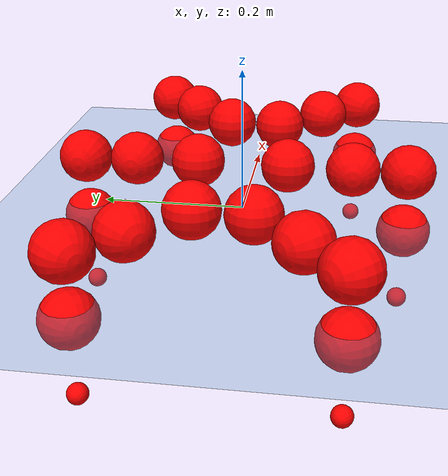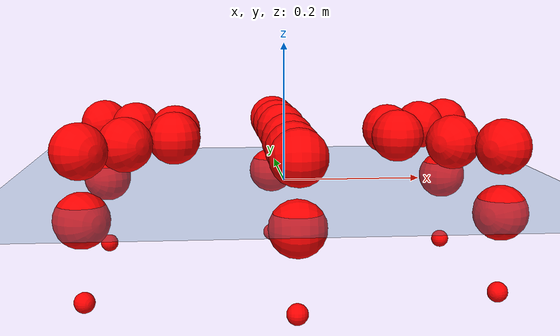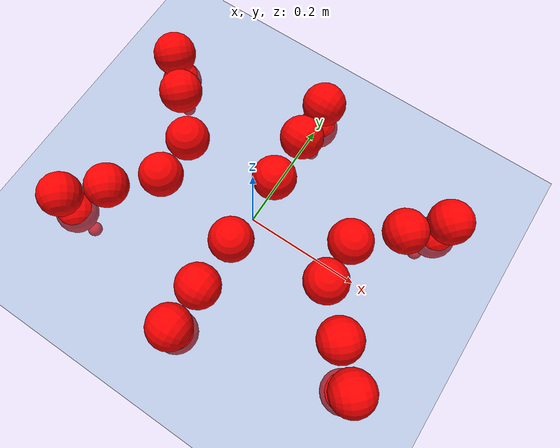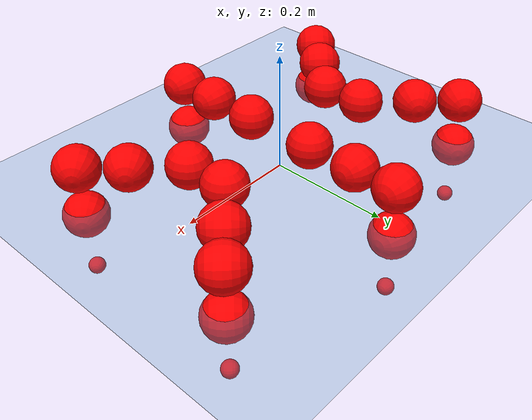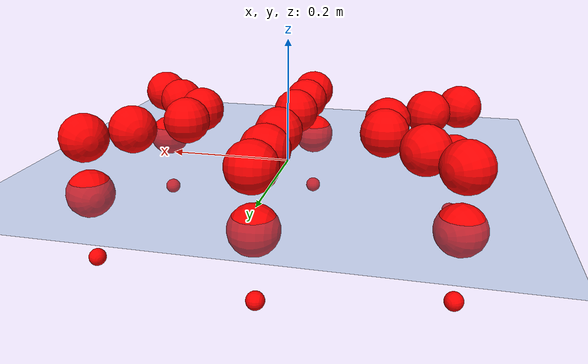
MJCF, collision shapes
<mujoco model="Golem">
  <compiler angle="radian" assetdir="assets" balanceinertia="true" inertiafromgeom="false"/>

  <option timestep="0.005" density="1.2" viscosity="2e-05"/>

  <size nkey="1"/>

  <visual>
    <quality shadowsize="8192"/>
    <map shadowclip="0.5"/>
  </visual>

  <default>
    <default class="/">
      <joint armature="0.01" damping="0.01" frictionloss="0.01"/>
      <geom contype="0" conaffinity="0" group="1" solref="-1000 -80"/>
      <site size="0.01 0.005 0.005" group="5"/>
      <general forcelimited="true" biastype="affine" gainprm="25" biasprm="0 -25 -0.5"/>
      <default class="visual">
        <geom type="mesh" group="2"/>
      </default>
      <default class="collision">
        <geom group="3"/>
      </default>
      <default class="foot">
        <geom size="0.01 0 0" condim="6" group="4" priority="1" solimp="0.015 1 0.01"/>
      </default>
      <default class="reward_collision_sphere">
        <geom group="5" rgba="1 0 0 1"/>
      </default>
    </default>
  </default>

  <asset>
    <texture type="skybox" colorspace="auto" name="//unnamed_texture_0" builtin="gradient" rgb1="0.95 0.95 0.95" rgb2="0.95 0.95 0.95" width="100" height="600"/>
    <texture type="2d" colorspace="auto" name="texplane" builtin="checker" rgb1="0.345 0.575 0.748" rgb2="0.345 0.575 0.748" markrgb="1 1 1" width="512" height="512"/>
    <material name="MatPlane" class="/" texture="texplane" texuniform="true" texrepeat="2 2" specular="0.9"/>
    <mesh name="body" class="/" file="body.stl" scale="0.001 0.001 0.001"/>
    <mesh name="coxa" class="/" file="coxa.stl" scale="0.001 0.001 0.001"/>
    <mesh name="femur" class="/" file="femur.stl" scale="0.001 0.001 0.001"/>
    <mesh name="tibia" class="/" file="tibia.stl" scale="0.001 0.001 0.001"/>
    <mesh name="tarsus" class="/" file="tarsus.stl" scale="0.001 0.001 0.001"/>
  </asset>

  <worldbody>
    <geom name="floor" class="/" size="100 100 0.125" type="plane" group="0" material="MatPlane"/>
    <light name="toplight_shadow" class="/" pos="0 0 5" dir="0.0990148 0.0990148 -0.990148" type="directional" ambient="0.04 0.04 0.04" diffuse="0.55 0.55 0.55" specular="0.12 0.12 0.12"/>
    <light name="toplight_fill" class="/" pos="0 0 5" dir="0.0990148 0.0990148 -0.990148" type="directional" castshadow="false" ambient="0.04 0.04 0.04" diffuse="0.3 0.3 0.3" specular="0.08 0.08 0.08"/>
    <body name="trunk" pos="0.000899744 0.000834674 0.000390855" quat="1 -2.4796e-05 0.000153983 2.62166e-06">
      <inertial pos="-0.000584962 -0.000152489 -0.00434186" quat="0.999991 4.27289e-05 0.00237666 -0.00359509" mass="2.95166" diaginertia="0.0107192 0.00174357 0.013415"/>
      <joint name="//unnamed_joint_0" type="free"/>
      <geom name="//unnamed_geom_1" class="/" pos="0 0 0.0680978" quat="1 0 0 0" type="mesh" rgba="0.9 0.9 0.9 1" mesh="body"/>
      <site name="imu" class="/" pos="0.129328 -0.00449658 0.105908" size="0.00928361"/>
      <camera name="track" class="/" pos="0 -1.41053 0" quat="0.707107 0.707107 0 0" mode="trackcom"/>
      <camera name="ego_camera" class="/" pos="0.132052 0 0.106403" quat="-0.5 -0.5 0.5 0.5"/>
      <body name="coxa_RR" pos="-0.17993 -0.0583502 0.0680169" quat="0.382773 3.61897e-05 -0.000140735 -0.923842">
        <inertial pos="1.59904e-05 0.000131752 0.000457508" quat="1 -0.000367798 -0.000239536 -1.86561e-05" mass="0.160991" diaginertia="0.0109994 0.0017485 0.0135813"/>
        <joint name="coxa_joint_RR" class="/" pos="0 0 0" axis="-0.0021097 -0.0011725 -0.999997" range="-3.13587 3.14197" armature="0.00925863" damping="0.00994166" frictionloss="0.00941835"/>
        <geom name="//unnamed_geom_2" class="/" type="mesh" rgba="0.2 0.2 0.2 1" mesh="coxa"/>
        <geom name="//unnamed_geom_3" class="reward_collision_sphere" size="0.0371344" pos="-0.0304736 0 0"/>
        <body name="femur_RR" pos="0.0596272 0.00132229 0.000168301" quat="0.500015 -0.499731 0.49991 0.500344">
          <inertial pos="-0.000297899 -9.87973e-05 -0.000884062" quat="0.999996 -0.000524379 0.00255073 0.000620548" mass="0.161315" diaginertia="0.010878 0.00176131 0.0137815"/>
          <joint name="femur_joint_RR" class="/" pos="0 0 0" axis="0.00242019 -0.000537052 -0.999997" range="-3.14779 3.14061" armature="0.009381" damping="0.00374983" frictionloss="0.00933651"/>
          <geom name="//unnamed_geom_4" class="/" type="mesh" rgba="0.9 0.9 0.9 1" mesh="femur"/>
          <geom name="//unnamed_geom_5" class="reward_collision_sphere" size="0.0371344"/>
          <body name="tibia_RR" pos="0.000645513 -0.076185 0.000313744" quat="3.57652e-05 1 4.20575e-05 -1.26535e-06">
            <inertial pos="0.000227976 0.000371284 0.000416582" quat="0.999992 -0.000714031 0.00321482 0.00247142" mass="0.16161" diaginertia="0.0108946 0.00174877 0.0137876"/>
            <joint name="tibia_joint_RR" class="/" pos="0 0 0" axis="0.00168052 -0.00173676 0.999997" range="-3.12194 3.13823" armature="0.00951097" damping="5.78877e-05" frictionloss="0.0096307"/>
            <geom name="//unnamed_geom_6" class="/" type="mesh" rgba="0.2 0.2 0.2 1" mesh="tibia"/>
            <geom name="//unnamed_geom_7" class="reward_collision_sphere" size="0.0371344"/>
            <body name="tarsus_RR" pos="0.0892357 -0.000429963 -0.00132206" quat="1 -3.73177e-05 0.000195136 2.07791e-05">
              <inertial pos="0.0618 0.000675251 0.000123761" quat="0.500853 0.498133 0.499426 0.501581" mass="0.163714" diaginertia="0.0108876 0.00176559 0.0137402"/>
              <joint name="tarsus_joint_RR" class="/" pos="0 0 0" axis="-0.00212881 0.00258584 0.999994" stiffness="0.000638515" range="-3.13245 3.15552" armature="0.0093733" damping="0.0412748" frictionloss="0.00948116"/>
              <geom name="//unnamed_geom_8" class="/" type="mesh" rgba="0.9 0.9 0.9 1" mesh="tarsus"/>
              <geom name="foot_1" class="foot" size="0.0090663" pos="0.113768 0 0" quat="0 -0.707107 0 0.707107"/>
              <geom name="//unnamed_geom_10" class="reward_collision_sphere" size="0.0371344"/>
              <geom name="//unnamed_geom_11" class="reward_collision_sphere" size="0.0139254" pos="0.109197 0 0"/>
              <site name="foot_1" class="foot" pos="0.113768 0 0" quat="0 -0.707107 0 0.707107" size="0.00928361"/>
            </body>
          </body>
        </body>
      </body>
      <body name="coxa_RM" pos="-0.000348978 -0.0944619 0.0676936" quat="0.707049 -0.000115978 1.09298e-05 -0.707165">
        <inertial pos="0.000869426 0.000393437 0.000389749" quat="0.999992 -0.00326371 -0.00236562 -0.000168287" mass="0.159875" diaginertia="0.0108335 0.00174715 0.0137083"/>
        <joint name="coxa_joint_RM" class="/" pos="0 0 0" axis="4.25802e-05 -3.64602e-05 -1" range="-3.14713 3.1401" armature="0.00935284" damping="0.0100075" frictionloss="0.00942847"/>
        <geom name="//unnamed_geom_12" class="/" type="mesh" rgba="0.2 0.2 0.2 1" mesh="coxa"/>
        <geom name="//unnamed_geom_13" class="reward_collision_sphere" size="0.0371344" pos="-0.0304736 0 0"/>
        <body name="femur_RM" pos="0.0587919 -0.000632251 -0.0005764" quat="0.499622 -0.500359 0.500052 0.499966">
          <inertial pos="4.40299e-05 -0.000322704 1.79591e-05" quat="0.999998 -0.0015272 0.000694208 0.000773819" mass="0.15891" diaginertia="0.0108706 0.00175754 0.0135871"/>
          <joint name="femur_joint_RM" class="/" pos="0 0 0" axis="-0.00171425 0.00284896 -0.999994" range="-3.13764 3.14197" armature="0.0092928" damping="0.0126474" frictionloss="0.00938607"/>
          <geom name="//unnamed_geom_14" class="/" type="mesh" rgba="0.9 0.9 0.9 1" mesh="femur"/>
          <geom name="//unnamed_geom_15" class="reward_collision_sphere" size="0.0371344"/>
          <body name="tibia_RM" pos="-0.000207222 -0.0743892 -0.000124059" quat="2.41737e-05 1 -1.80193e-05 3.66049e-05">
            <inertial pos="-0.000325743 0.000112499 0.00077774" quat="0.999999 -0.000561713 0.00012446 0.000976352" mass="0.159368" diaginertia="0.0107857 0.00177426 0.013669"/>
            <joint name="tibia_joint_RM" class="/" pos="0 0 0" axis="-0.00620536 0.00128839 0.99998" range="-3.14175 3.14088" armature="0.00917065" damping="0.0121557" frictionloss="0.00929765"/>
            <geom name="//unnamed_geom_16" class="/" type="mesh" rgba="0.2 0.2 0.2 1" mesh="tibia"/>
            <geom name="//unnamed_geom_17" class="reward_collision_sphere" size="0.0371344"/>
            <body name="tarsus_RM" pos="0.0881496 5.64543e-05 0.00091268" quat="1 5.86927e-05 4.11193e-05 0.000114326">
              <inertial pos="0.0607048 0.000141995 0.000496579" quat="0.500842 0.498064 0.501016 0.500073" mass="0.15999" diaginertia="0.0108892 0.00175107 0.0135458"/>
              <joint name="tarsus_joint_RM" class="/" pos="0 0 0" axis="-0.00404263 0.000457299 0.999992" stiffness="6.37509e-06" range="-3.14537 3.13659" armature="0.00926152" damping="0.00760864" frictionloss="0.00914088"/>
              <geom name="//unnamed_geom_18" class="/" type="mesh" rgba="0.9 0.9 0.9 1" mesh="tarsus"/>
              <geom name="foot_2" class="foot" size="0.00931598" pos="0.113768 0 0" quat="0 -0.707107 0 0.707107"/>
              <geom name="//unnamed_geom_20" class="reward_collision_sphere" size="0.0371344"/>
              <geom name="//unnamed_geom_21" class="reward_collision_sphere" size="0.0139254" pos="0.109197 0 0"/>
              <site name="foot_2" class="foot" pos="0.113768 0 0" quat="0 -0.707107 0 0.707107" size="0.00928361"/>
            </body>
          </body>
        </body>
      </body>
      <body name="coxa_RF" pos="0.181134 -0.0591174 0.0684532" quat="0.92387 -6.18936e-05 6.39693e-05 -0.382707">
        <inertial pos="-0.000404754 0.000433677 -0.000189389" quat="0.999997 -0.00236529 -0.000535886 -0.00057955" mass="0.1619" diaginertia="0.0106846 0.00174144 0.0136224"/>
        <joint name="coxa_joint_RF" class="/" pos="0 0 0" axis="0.00105634 -0.00244046 -0.999996" range="-3.13334 3.13945" armature="0.00894383" damping="0.00789486" frictionloss="0.00918429"/>
        <geom name="//unnamed_geom_22" class="/" type="mesh" rgba="0.2 0.2 0.2 1" mesh="coxa"/>
        <geom name="//unnamed_geom_23" class="reward_collision_sphere" size="0.0371344" pos="-0.0304736 0 0"/>
        <body name="femur_RF" pos="0.0598012 -0.000239418 -0.00109757" quat="0.499996 -0.5 0.500002 0.500001">
          <inertial pos="-0.000555153 5.20794e-05 -0.000644399" quat="0.999999 -0.000407069 -0.000439413 -0.00138693" mass="0.161656" diaginertia="0.0106829 0.00175482 0.0136473"/>
          <joint name="femur_joint_RF" class="/" pos="0 0 0" axis="0.00262765 0.00381844 -0.999989" range="-3.13212 3.15576" armature="0.00920357" damping="0.0106819" frictionloss="0.00906078"/>
          <geom name="//unnamed_geom_24" class="/" type="mesh" rgba="0.9 0.9 0.9 1" mesh="femur"/>
          <geom name="//unnamed_geom_25" class="reward_collision_sphere" size="0.0371344"/>
          <body name="tibia_RF" pos="-0.000541556 -0.0763026 -0.00123509" quat="9.18115e-05 1 -4.02501e-05 8.0472e-05">
            <inertial pos="0.000113874 0.000682726 0.000137449" quat="0.999992 -1.25606e-05 -0.00182541 0.00352993" mass="0.158212" diaginertia="0.010811 0.00173703 0.0136617"/>
            <joint name="tibia_joint_RF" class="/" pos="0 0 0" axis="0.000158197 -0.00411039 0.999992" range="-3.14259 3.15471" armature="0.00938138" damping="0" frictionloss="0.00917426"/>
            <geom name="//unnamed_geom_26" class="/" type="mesh" rgba="0.2 0.2 0.2 1" mesh="tibia"/>
            <geom name="//unnamed_geom_27" class="reward_collision_sphere" size="0.0371344"/>
            <body name="tarsus_RF" pos="0.0885559 -0.000568392 0.000862187" quat="1 7.85184e-05 -0.000268051 -0.000237833">
              <inertial pos="0.0605874 0.000166733 0.000193403" quat="0.500274 0.500551 0.501205 0.497963" mass="0.16032" diaginertia="0.0107732 0.00175815 0.0137526"/>
              <joint name="tarsus_joint_RF" class="/" pos="0 0 0" axis="0.000252269 0.00430069 0.999991" range="-3.12567 3.1389" armature="0.0089313" damping="0.00246351" frictionloss="0.00962181"/>
              <geom name="//unnamed_geom_28" class="/" type="mesh" rgba="0.9 0.9 0.9 1" mesh="tarsus"/>
              <geom name="foot_3" class="foot" size="0.00927459" pos="0.113768 0 0" quat="0 -0.707107 0 0.707107"/>
              <geom name="//unnamed_geom_30" class="reward_collision_sphere" size="0.0371344"/>
              <geom name="//unnamed_geom_31" class="reward_collision_sphere" size="0.0139254" pos="0.109197 0 0"/>
              <site name="foot_3" class="foot" pos="0.113768 0 0" quat="0 -0.707107 0 0.707107" size="0.00928361"/>
            </body>
          </body>
        </body>
      </body>
      <body name="coxa_LR" pos="-0.181176 0.0612533 0.0697858" quat="0.382784 6.34023e-05 -2.02873e-05 0.923838">
        <inertial pos="3.57983e-05 0.000293753 0.000171079" quat="0.999993 0.000928795 0.00123672 -0.00338154" mass="0.159082" diaginertia="0.0106651 0.00172019 0.0135356"/>
        <joint name="coxa_joint_LR" class="/" pos="0 0 0" axis="0.00059514 -0.000273277 -1" range="-3.14668 3.15038" armature="0.00893407" damping="0.0106819" frictionloss="0.00901778"/>
        <geom name="//unnamed_geom_32" class="/" type="mesh" rgba="0.2 0.2 0.2 1" mesh="coxa"/>
        <geom name="//unnamed_geom_33" class="reward_collision_sphere" size="0.0371344" pos="-0.0304736 0 0"/>
        <body name="femur_LR" pos="0.0615614 -0.00263881 -0.00137902" quat="0.499948 -0.500026 0.500005 0.500021">
          <inertial pos="-2.39521e-06 0.000148671 0.000195971" quat="0.999992 0.00192915 0.00209696 0.00274626" mass="0.161621" diaginertia="0.0109454 0.00177783 0.0137163"/>
          <joint name="femur_joint_LR" class="/" pos="0 0 0" axis="0.000245696 -0.000260754 1" range="-3.14553 3.15371" armature="0.00889233" damping="0.00327464" frictionloss="0.00911623"/>
          <geom name="//unnamed_geom_34" class="/" type="mesh" rgba="0.9 0.9 0.9 1" mesh="femur"/>
          <geom name="//unnamed_geom_35" class="reward_collision_sphere" size="0.0371344"/>
          <body name="tibia_LR" pos="0.000999909 -0.0772531 -0.00111166" quat="-0.000279175 1 -0.000219799 6.71503e-05">
            <inertial pos="-0.00117969 0.000510712 0.000170971" quat="0.999994 -0.00335851 -8.552e-05 0.0002119" mass="0.162337" diaginertia="0.0109476 0.00173822 0.0135822"/>
            <joint name="tibia_joint_LR" class="/" pos="0 0 0" axis="1.7216e-05 1.62225e-05 -1" range="-3.14126 3.14135" armature="0.00939759" damping="0.00411235" frictionloss="0.00892346"/>
            <geom name="//unnamed_geom_36" class="/" type="mesh" rgba="0.2 0.2 0.2 1" mesh="tibia"/>
            <geom name="//unnamed_geom_37" class="reward_collision_sphere" size="0.0371344"/>
            <body name="tarsus_LR" pos="0.0893714 0.00036269 0.0020213" quat="1 0.000197481 0.00010922 -2.00005e-06">
              <inertial pos="0.0621731 0.00130747 -2.3814e-05" quat="0.498735 0.501786 0.500007 0.499468" mass="0.158437" diaginertia="0.0106639 0.00172451 0.0134729"/>
              <joint name="tarsus_joint_LR" class="/" pos="0 0 0" axis="-0.000229635 0.000435783 -1" stiffness="0.00377535" range="-3.14518 3.13123" armature="0.00900151" damping="0.0274149" frictionloss="0.00922574"/>
              <geom name="//unnamed_geom_38" class="/" type="mesh" rgba="0.9 0.9 0.9 1" mesh="tarsus"/>
              <geom name="foot_4" class="foot" size="0.00936416" pos="0.113768 0 0" quat="0.707107 0 -0.707107 0"/>
              <geom name="//unnamed_geom_40" class="reward_collision_sphere" size="0.0371344"/>
              <geom name="//unnamed_geom_41" class="reward_collision_sphere" size="0.0139254" pos="0.109197 0 0"/>
              <site name="foot_4" class="foot" pos="0.113768 0 0" quat="0.707107 0 -0.707107 0" size="0.00928361"/>
            </body>
          </body>
        </body>
      </body>
      <body name="coxa_LM" pos="-0.000310221 0.0920239 0.0686686" quat="0.706932 -0.000126328 -1.18099e-05 0.707282">
        <inertial pos="-0.000102509 5.88842e-05 0.00184902" quat="0.999996 -0.00158766 0.00145943 -0.00171169" mass="0.158772" diaginertia="0.0108108 0.00173286 0.0134936"/>
        <joint name="coxa_joint_LM" class="/" pos="0 0 0" axis="-0.000713255 -0.000909472 -0.999999" range="-3.14289 3.14015" armature="0.00965301" damping="0" frictionloss="0.00940616"/>
        <geom name="//unnamed_geom_42" class="/" type="mesh" rgba="0.2 0.2 0.2 1" mesh="coxa"/>
        <geom name="//unnamed_geom_43" class="reward_collision_sphere" size="0.0371344" pos="-0.0304736 0 0"/>
        <body name="femur_LM" pos="0.0566575 0.0012173 -0.00109682" quat="0.499841 -0.499674 0.500061 0.500424">
          <inertial pos="0.000403982 4.74908e-05 0.000108976" quat="0.999991 0.000289567 0.00402945 -0.000946614" mass="0.157817" diaginertia="0.010632 0.00172403 0.0134941"/>
          <joint name="femur_joint_LM" class="/" pos="0 0 0" axis="-0.000155859 -0.0013665 0.999999" range="-3.15751 3.14787" armature="0.00884573" damping="0.00255464" frictionloss="0.00927198"/>
          <geom name="//unnamed_geom_44" class="/" type="mesh" rgba="0.9 0.9 0.9 1" mesh="femur"/>
          <geom name="//unnamed_geom_45" class="reward_collision_sphere" size="0.0371344"/>
          <body name="tibia_LM" pos="0.000114393 -0.0740178 0.00102968" quat="9.42205e-05 1 -0.000101563 -1.86438e-05">
            <inertial pos="0.000155716 -0.0015786 0.000807795" quat="1 0.000216276 3.47146e-05 0.000255053" mass="0.160373" diaginertia="0.0109047 0.0017548 0.0135357"/>
            <joint name="tibia_joint_LM" class="/" pos="0 0 0" axis="-0.00490145 -0.00142691 -0.999987" range="-3.13163 3.13881" armature="0.00889521" damping="0" frictionloss="0.00964013"/>
            <geom name="//unnamed_geom_46" class="/" type="mesh" rgba="0.2 0.2 0.2 1" mesh="tibia"/>
            <geom name="//unnamed_geom_47" class="reward_collision_sphere" size="0.0371344"/>
            <body name="tarsus_LM" pos="0.0899333 0.000113786 -0.0016271" quat="1 -0.000383905 0.000134133 -6.99944e-05">
              <inertial pos="0.0617147 0.000246014 -0.00100118" quat="0.50033 0.499811 0.500495 0.499362" mass="0.161003" diaginertia="0.0108599 0.00177765 0.0137587"/>
              <joint name="tarsus_joint_LM" class="/" pos="0 0 0" axis="-0.00216313 0.00484609 -0.999986" range="-3.15992 3.13843" armature="0.00934976" damping="0" frictionloss="0.00928279"/>
              <geom name="//unnamed_geom_48" class="/" type="mesh" rgba="0.9 0.9 0.9 1" mesh="tarsus"/>
              <geom name="foot_5" class="foot" size="0.00931945" pos="0.113768 0 0" quat="0.707107 0 -0.707107 0"/>
              <geom name="//unnamed_geom_50" class="reward_collision_sphere" size="0.0371344"/>
              <geom name="//unnamed_geom_51" class="reward_collision_sphere" size="0.0139254" pos="0.109197 0 0"/>
              <site name="foot_5" class="foot" pos="0.113768 0 0" quat="0.707107 0 -0.707107 0" size="0.00928361"/>
            </body>
          </body>
        </body>
      </body>
      <body name="coxa_LF" pos="0.180308 0.0590052 0.0692591" quat="0.923861 1.85942e-05 1.04783e-05 0.382729">
        <inertial pos="0.000289796 0.000578482 2.22628e-06" quat="1 -0.000148344 0.000904019 -0.000157354" mass="0.162558" diaginertia="0.0110135 0.0017416 0.0137734"/>
        <joint name="coxa_joint_LF" class="/" pos="0 0 0" axis="0.000210456 -0.000182093 -1" range="-3.14042 3.13308" armature="0.00974487" damping="0.00773549" frictionloss="0.00945918"/>
        <geom name="//unnamed_geom_52" class="/" type="mesh" rgba="0.2 0.2 0.2 1" mesh="coxa"/>
        <geom name="//unnamed_geom_53" class="reward_collision_sphere" size="0.0371344" pos="-0.0304736 0 0"/>
        <body name="femur_LF" pos="0.0596479 -0.000611491 -0.00114765" quat="0.499807 -0.500007 0.500109 0.500077">
          <inertial pos="-0.000957361 -0.000578129 0.000731496" quat="0.999999 -0.00132688 0.000518132 0.000309352" mass="0.15964" diaginertia="0.0109326 0.00176429 0.0136861"/>
          <joint name="femur_joint_LF" class="/" pos="0 0 0" axis="-0.00625262 0.00110097 0.99998" range="-3.14344 3.13109" armature="0.00932066" damping="0.00367504" frictionloss="0.00951224"/>
          <geom name="//unnamed_geom_54" class="/" type="mesh" rgba="0.9 0.9 0.9 1" mesh="femur"/>
          <geom name="//unnamed_geom_55" class="reward_collision_sphere" size="0.0371344"/>
          <body name="tibia_LF" pos="0.00105447 -0.0755297 0.000649067" quat="-0.000102563 1 -0.000137767 0.000140505">
            <inertial pos="0.000493843 2.99299e-06 1.16752e-05" quat="0.999999 0.000900132 -0.000651401 0.000106095" mass="0.15977" diaginertia="0.0109052 0.00174377 0.0135894"/>
            <joint name="tibia_joint_LF" class="/" pos="0 0 0" axis="0.000808545 0.000301957 -1" range="-3.12976 3.13249" armature="0.00882478" damping="0" frictionloss="0.00927418"/>
            <geom name="//unnamed_geom_56" class="/" type="mesh" rgba="0.2 0.2 0.2 1" mesh="tibia"/>
            <geom name="//unnamed_geom_57" class="reward_collision_sphere" size="0.0371344"/>
            <body name="tarsus_LF" pos="0.0898182 -0.000918211 0.000226876" quat="1 -0.000406262 -0.000167588 -0.000260302">
              <inertial pos="0.0632774 0.000409674 0.000148449" quat="0.500579 0.498965 0.499878 0.500577" mass="0.160717" diaginertia="0.0107553 0.00172921 0.0136211"/>
              <joint name="tarsus_joint_LF" class="/" pos="0 0 0" axis="0.00234836 0.00538001 -0.999983" stiffness="0.0267259" range="-3.13419 3.14667" armature="0.00935802" damping="0.0259655" frictionloss="0.00899127"/>
              <geom name="//unnamed_geom_58" class="/" type="mesh" rgba="0.9 0.9 0.9 1" mesh="tarsus"/>
              <geom name="foot_6" class="foot" size="0.00932277" pos="0.113768 0 0" quat="0.707107 0 -0.707107 0"/>
              <geom name="//unnamed_geom_60" class="reward_collision_sphere" size="0.0371344"/>
              <geom name="//unnamed_geom_61" class="reward_collision_sphere" size="0.0139254" pos="0.109197 0 0"/>
              <site name="foot_6" class="foot" pos="0.113768 0 0" quat="0.707107 0 -0.707107 0" size="0.00928361"/>
            </body>
          </body>
        </body>
      </body>
    </body>
  </worldbody>

  <contact>
    <pair class="/" geom1="floor" geom2="foot_1" name="//unnamed_contact_0"/>
    <pair class="/" geom1="floor" geom2="foot_2" name="//unnamed_contact_1"/>
    <pair class="/" geom1="floor" geom2="foot_3" name="//unnamed_contact_2"/>
    <pair class="/" geom1="floor" geom2="foot_4" name="//unnamed_contact_3"/>
    <pair class="/" geom1="floor" geom2="foot_5" name="//unnamed_contact_4"/>
    <pair class="/" geom1="floor" geom2="foot_6" name="//unnamed_contact_5"/>
  </contact>

  <actuator>
    <general name="coxa_joint_RR" class="/" joint="coxa_joint_RR" forcerange="-6.71617 6.71617" gainprm="22.3876" biasprm="0 -22.3876 -0.496535"/>
    <general name="femur_joint_RR" class="/" joint="femur_joint_RR" forcerange="-6.65523 6.65523" gainprm="22.3876" biasprm="0 -22.3876 -0.496535"/>
    <general name="tibia_joint_RR" class="/" joint="tibia_joint_RR" forcerange="-6.60906 6.60906" gainprm="22.3876" biasprm="0 -22.3876 -0.496535"/>
    <general name="tarsus_joint_RR" class="/" joint="tarsus_joint_RR" forcerange="-6.58749 6.58749" gainprm="22.3876" biasprm="0 -22.3876 -0.496535"/>
    <general name="coxa_joint_RM" class="/" joint="coxa_joint_RM" forcerange="-6.7829 6.7829" gainprm="22.3876" biasprm="0 -22.3876 -0.496535"/>
    <general name="femur_joint_RM" class="/" joint="femur_joint_RM" forcerange="-6.78301 6.78301" gainprm="22.3876" biasprm="0 -22.3876 -0.496535"/>
    <general name="tibia_joint_RM" class="/" joint="tibia_joint_RM" forcerange="-6.81462 6.81462" gainprm="22.3876" biasprm="0 -22.3876 -0.496535"/>
    <general name="tarsus_joint_RM" class="/" joint="tarsus_joint_RM" forcerange="-6.91124 6.91124" gainprm="22.3876" biasprm="0 -22.3876 -0.496535"/>
    <general name="coxa_joint_RF" class="/" joint="coxa_joint_RF" forcerange="-6.90051 6.90051" gainprm="22.3876" biasprm="0 -22.3876 -0.496535"/>
    <general name="femur_joint_RF" class="/" joint="femur_joint_RF" forcerange="-6.77318 6.77318" gainprm="22.3876" biasprm="0 -22.3876 -0.496535"/>
    <general name="tibia_joint_RF" class="/" joint="tibia_joint_RF" forcerange="-6.81415 6.81415" gainprm="22.3876" biasprm="0 -22.3876 -0.496535"/>
    <general name="tarsus_joint_RF" class="/" joint="tarsus_joint_RF" forcerange="-6.67446 6.67446" gainprm="22.3876" biasprm="0 -22.3876 -0.496535"/>
    <general name="coxa_joint_LR" class="/" joint="coxa_joint_LR" forcerange="-6.75707 6.75707" gainprm="22.3876" biasprm="0 -22.3876 -0.496535"/>
    <general name="femur_joint_LR" class="/" joint="femur_joint_LR" forcerange="-6.92555 6.92555" gainprm="22.3876" biasprm="0 -22.3876 -0.496535"/>
    <general name="tibia_joint_LR" class="/" joint="tibia_joint_LR" forcerange="-6.87171 6.87171" gainprm="22.3876" biasprm="0 -22.3876 -0.496535"/>
    <general name="tarsus_joint_LR" class="/" joint="tarsus_joint_LR" forcerange="-7.00667 7.00667" gainprm="22.3876" biasprm="0 -22.3876 -0.496535"/>
    <general name="coxa_joint_LM" class="/" joint="coxa_joint_LM" forcerange="-6.8685 6.8685" gainprm="22.3876" biasprm="0 -22.3876 -0.496535"/>
    <general name="femur_joint_LM" class="/" joint="femur_joint_LM" forcerange="-6.67177 6.67177" gainprm="22.3876" biasprm="0 -22.3876 -0.496535"/>
    <general name="tibia_joint_LM" class="/" joint="tibia_joint_LM" forcerange="-6.99058 6.99058" gainprm="22.3876" biasprm="0 -22.3876 -0.496535"/>
    <general name="tarsus_joint_LM" class="/" joint="tarsus_joint_LM" forcerange="-6.66038 6.66038" gainprm="22.3876" biasprm="0 -22.3876 -0.496535"/>
    <general name="coxa_joint_LF" class="/" joint="coxa_joint_LF" forcerange="-6.766 6.766" gainprm="22.3876" biasprm="0 -22.3876 -0.496535"/>
    <general name="femur_joint_LF" class="/" joint="femur_joint_LF" forcerange="-6.89965 6.89965" gainprm="22.3876" biasprm="0 -22.3876 -0.496535"/>
    <general name="tibia_joint_LF" class="/" joint="tibia_joint_LF" forcerange="-6.55026 6.55026" gainprm="22.3876" biasprm="0 -22.3876 -0.496535"/>
    <general name="tarsus_joint_LF" class="/" joint="tarsus_joint_LF" forcerange="-6.85153 6.85153" gainprm="22.3876" biasprm="0 -22.3876 -0.496535"/>
  </actuator>

  <sensor>
    <gyro site="imu" name="imu_angular_velocity"/>
    <velocimeter site="imu" name="imu_linear_velocity"/>
    <framelinvel objtype="site" objname="foot_1" name="foot_1_global_linear_velocity"/>
    <framelinvel objtype="site" objname="foot_2" name="foot_2_global_linear_velocity"/>
    <framelinvel objtype="site" objname="foot_3" name="foot_3_global_linear_velocity"/>
    <framelinvel objtype="site" objname="foot_4" name="foot_4_global_linear_velocity"/>
    <framelinvel objtype="site" objname="foot_5" name="foot_5_global_linear_velocity"/>
    <framelinvel objtype="site" objname="foot_6" name="foot_6_global_linear_velocity"/>
  </sensor>

  <keyframe>
    <key name="home" qpos="0 0 0.1457 1 0 0 0 0 0 0 0 0 0 0 0 0 0 0 0 0 0 0 0 0 0 0 0 0 0 0 0"/>
  </keyframe>
</mujoco>
